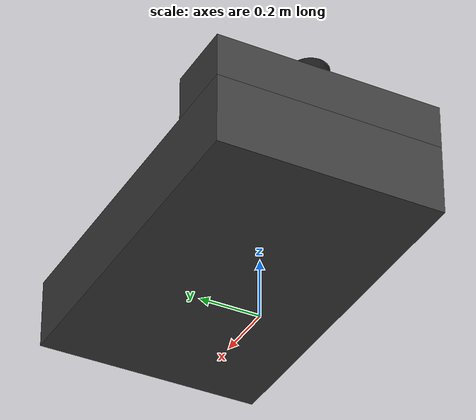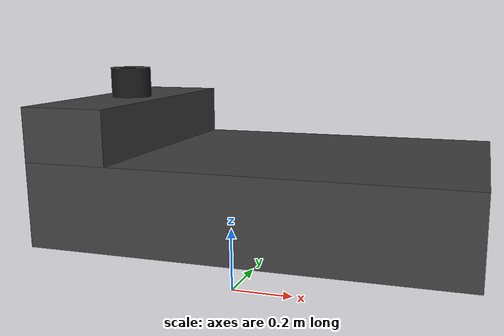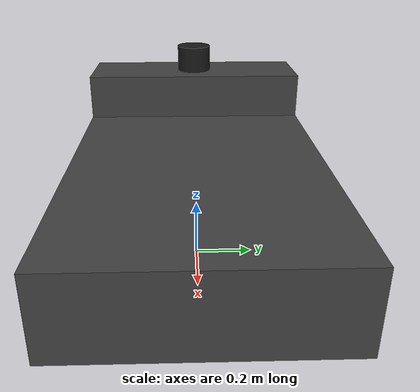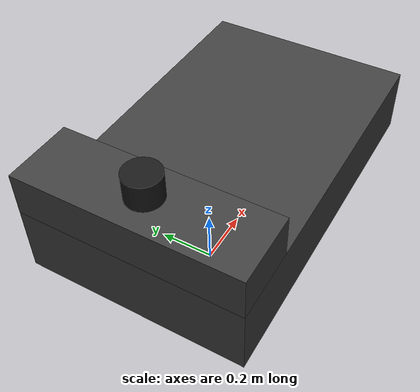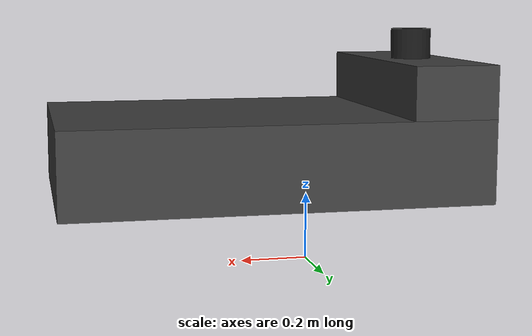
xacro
<?xml version="1.0"?>
<robot name="tugbot" xmlns:xacro="http://www.ros.org/wiki/xacro">
  <material name="dark_gray">
    <color rgba="0.25 0.25 0.25 1.0"/>
  </material>

  <material name="sensor_black">
    <color rgba="0.1 0.1 0.1 1.0"/>
  </material>

  <link name="base_footprint"/>

  <joint name="base_footprint_to_base_link" type="fixed">
    <parent link="base_footprint"/>
    <child link="base_link"/>
    <origin xyz="0 0 0" rpy="0 0 0"/>
  </joint>

  <link name="base_link">
    <visual>
      <origin xyz="0.155 0 0.3375" rpy="0 0 0"/>
      <geometry>
        <box size="1.204 0.754 0.239"/>
      </geometry>
      <material name="dark_gray"/>
    </visual>
    <collision>
      <origin xyz="0.155 0 0.3375" rpy="0 0 0"/>
      <geometry>
        <box size="1.204 0.754 0.239"/>
      </geometry>
    </collision>
    <visual>
      <origin xyz="-0.3266 0 0.532" rpy="0 0 0"/>
      <geometry>
        <box size="0.2408 0.754 0.15"/>
      </geometry>
      <material name="dark_gray"/>
    </visual>
    <collision>
      <origin xyz="-0.3266 0 0.532" rpy="0 0 0"/>
      <geometry>
        <box size="0.2408 0.754 0.15"/>
      </geometry>
    </collision>
    <inertial>
      <origin xyz="0.155 0 0.3375" rpy="0 0 0"/>
      <mass value="43.0"/>
      <inertia ixx="3.213" ixy="0" ixz="0" iyy="6.068" iyz="0" izz="7.541"/>
    </inertial>
  </link>

  <joint name="scan_omni_joint" type="fixed">
    <parent link="base_link"/>
    <child link="scan_omni"/>
    <origin xyz="-0.3266 0 0.652" rpy="0 0 0"/>
  </joint>

  <link name="scan_omni">
    <visual>
      <geometry>
        <cylinder radius="0.06" length="0.09"/>
      </geometry>
      <material name="sensor_black"/>
    </visual>
  </link>

  <joint name="laser_alias_joint" type="fixed">
    <parent link="scan_omni"/>
    <child link="laser"/>
    <origin xyz="0 0 0" rpy="0 0 0"/>
  </joint>

  <link name="laser"/>
</robot>
